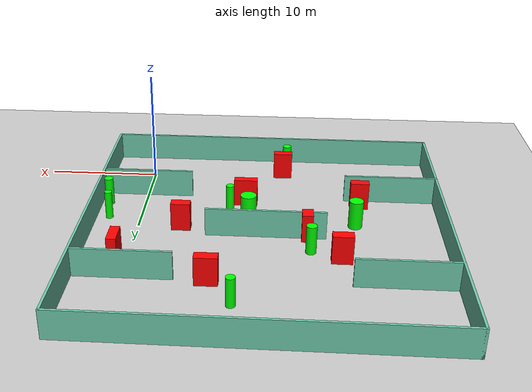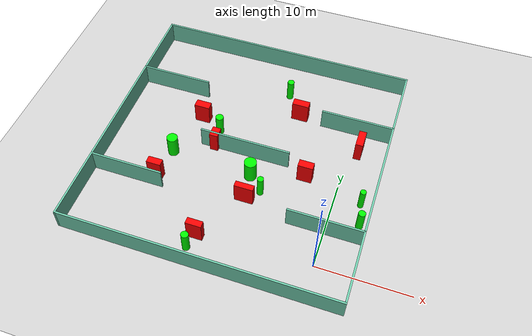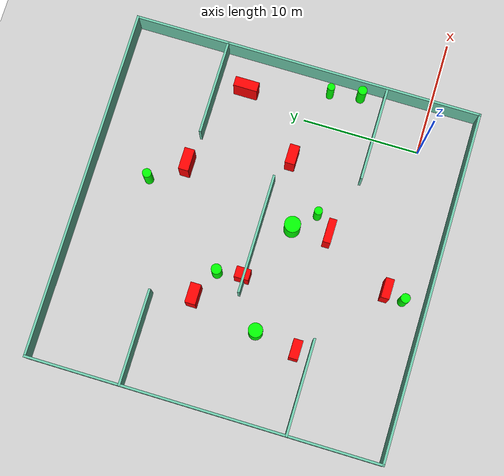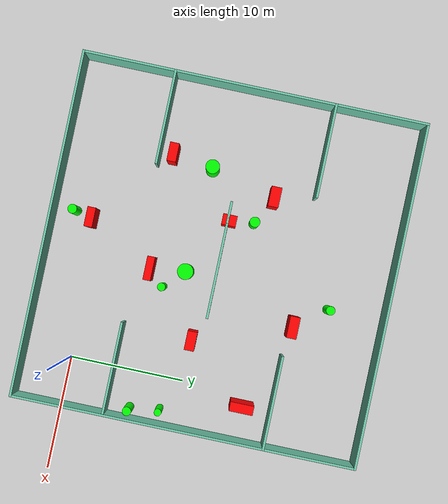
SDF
<sdf version="1.7">
 <world name="default">
  <light name="sun" type="directional">
   <pose>0 0 10 0 -0 0</pose>
   <diffuse>0.8 0.8 0.8 1</diffuse>
   <specular>0.2 0.2 0.2 1</specular>
   <attenuation>
    <range>1000</range>
    <constant>0.9</constant>
    <linear>0.01</linear>
    <quadratic>0.001</quadratic>
   </attenuation>
   <direction>-0.5 0.1 -0.9</direction>
   <spot><inner_angle>0</inner_angle><outer_angle>0</outer_angle><falloff>0</falloff></spot>
  </light>
  <model name="ground_plane">
   <static>1</static>
   <link name="link">
    <collision name="collision">
     <geometry><plane><normal>0 0 1</normal><size>100 100</size></plane></geometry>
     <surface>
      <contact><collide_bitmask>65535</collide_bitmask></contact>
      <friction><ode><mu>100</mu><mu2>50</mu2></ode></friction>
     </surface>
    </collision>
    <visual name="visual">
     <cast_shadows>0</cast_shadows>
     <geometry><plane><normal>0 0 1</normal><size>100 100</size></plane></geometry>
     <material>
      <script><uri>file://media/materials/scripts/gazebo.material</uri><name>Gazebo/Grey</name></script>
     </material>
    </visual>
   </link>
  </model>
  <gravity>0 0 -9.8</gravity>
  <magnetic_field>6e-06 2.3e-05 -4.2e-05</magnetic_field>
  <atmosphere type="adiabatic"/>
  <physics type="ode">
   <max_step_size>0.001</max_step_size>
   <real_time_factor>1</real_time_factor>
   <real_time_update_rate>1000</real_time_update_rate>
  </physics>
  <scene><ambient>0.4 0.4 0.4 1</ambient><background>0.7 0.7 0.7 1</background><shadows>1</shadows></scene>
  <spherical_coordinates>
   <surface_model>EARTH_WGS84</surface_model>
   <latitude_deg>0</latitude_deg>
   <longitude_deg>0</longitude_deg>
   <elevation>0</elevation>
   <heading_deg>0</heading_deg>
  </spherical_coordinates>
  <model name="my_base_walls">
   <link name="Wall_10">
    <collision name="Wall_10_Collision">
     <geometry><box><size>8.2 0.2 2.5</size></box></geometry>
     <pose>0 0 1.25 0 -0 0</pose>
    </collision>
    <visual name="Wall_10_Visual">
     <pose>0 0 1.25 0 -0 0</pose>
     <geometry><box><size>8.2 0.2 2.5</size></box></geometry>
     <material>
      <script><uri>file://media/materials/scripts/gazebo.material</uri><name>Gazebo/Grey</name></script>
      <ambient>0.435294 0.796078 0.67451 1</ambient>
     </material>
     <meta><layer>0</layer></meta>
    </visual>
    <pose>-11 -7 0 0 -0 0</pose>
   </link>
   <link name="Wall_12">
    <collision name="Wall_12_Collision">
     <geometry><box><size>8.2 0.2 2.5</size></box></geometry>
     <pose>0 0 1.25 0 -0 0</pose>
    </collision>
    <visual name="Wall_12_Visual">
     <pose>0 0 1.25 0 -0 0</pose>
     <geometry><box><size>8.2 0.2 2.5</size></box></geometry>
     <material>
      <script><uri>file://media/materials/scripts/gazebo.material</uri><name>Gazebo/Grey</name></script>
      <ambient>0.435294 0.796078 0.67451 1</ambient>
     </material>
     <meta><layer>0</layer></meta>
    </visual>
    <pose>-11 7 0 0 -0 0</pose>
   </link>
   <link name="Wall_14">
    <collision name="Wall_14_Collision">
     <geometry><box><size>8.2 0.2 2.5</size></box></geometry>
     <pose>0 0 1.25 0 -0 0</pose>
    </collision>
    <visual name="Wall_14_Visual">
     <pose>0 0 1.25 0 -0 0</pose>
     <geometry><box><size>8.2 0.2 2.5</size></box></geometry>
     <material>
      <script><uri>file://media/materials/scripts/gazebo.material</uri><name>Gazebo/Grey</name></script>
      <ambient>0.435294 0.796078 0.67451 1</ambient>
     </material>
     <meta><layer>0</layer></meta>
    </visual>
    <pose>11 7 0 0 -0 3.14159</pose>
   </link>
   <link name="Wall_16">
    <collision name="Wall_16_Collision">
     <geometry><box><size>10.2 0.2 2.5</size></box></geometry>
     <pose>0 0 1.25 0 -0 0</pose>
    </collision>
    <visual name="Wall_16_Visual">
     <pose>0 0 1.25 0 -0 0</pose>
     <geometry><box><size>10.2 0.2 2.5</size></box></geometry>
     <material>
      <script><uri>file://media/materials/scripts/gazebo.material</uri><name>Gazebo/Grey</name></script>
      <ambient>0.435294 0.796078 0.67451 1</ambient>
     </material>
     <meta><layer>0</layer></meta>
    </visual>
    <pose>0 0 0 0 -0 3.14159</pose>
   </link>
   <link name="Wall_2">
    <collision name="Wall_2_Collision">
     <geometry><box><size>30.2 0.2 2.5</size></box></geometry>
     <pose>0 0 1.25 0 -0 0</pose>
    </collision>
    <visual name="Wall_2_Visual">
     <pose>0 0 1.25 0 -0 0</pose>
     <geometry><box><size>30.2 0.2 2.5</size></box></geometry>
     <material>
      <script><uri>file://media/materials/scripts/gazebo.material</uri><name>Gazebo/Grey</name></script>
      <ambient>0.435294 0.796078 0.67451 1</ambient>
     </material>
     <meta><layer>0</layer></meta>
    </visual>
    <pose>0 -15 0 0 -0 3.14159</pose>
   </link>
   <link name="Wall_3">
    <collision name="Wall_3_Collision">
     <geometry><box><size>30.2 0.2 2.5</size></box></geometry>
     <pose>0 0 1.25 0 -0 0</pose>
    </collision>
    <visual name="Wall_3_Visual">
     <pose>0 0 1.25 0 -0 0</pose>
     <geometry><box><size>30.2 0.2 2.5</size></box></geometry>
     <material>
      <script><uri>file://media/materials/scripts/gazebo.material</uri><name>Gazebo/Grey</name></script>
      <ambient>0.435294 0.796078 0.67451 1</ambient>
     </material>
     <meta><layer>0</layer></meta>
    </visual>
    <pose>-15 0 0 0 -0 1.5708</pose>
   </link>
   <link name="Wall_4">
    <collision name="Wall_4_Collision">
     <geometry><box><size>30.2 0.2 2.5</size></box></geometry>
     <pose>0 0 1.25 0 -0 0</pose>
    </collision>
    <visual name="Wall_4_Visual">
     <pose>0 0 1.25 0 -0 0</pose>
     <geometry><box><size>30.2 0.2 2.5</size></box></geometry>
     <material>
      <script><uri>file://media/materials/scripts/gazebo.material</uri><name>Gazebo/Grey</name></script>
      <ambient>0.435294 0.796078 0.67451 1</ambient>
     </material>
     <meta><layer>0</layer></meta>
    </visual>
    <pose>0 15 0 0 -0 0</pose>
   </link>
   <link name="Wall_6">
    <collision name="Wall_6_Collision">
     <geometry><box><size>30.2 0.2 2.5</size></box></geometry>
     <pose>0 0 1.25 0 -0 0</pose>
    </collision>
    <visual name="Wall_6_Visual">
     <pose>0 0 1.25 0 -0 0</pose>
     <geometry><box><size>30.2 0.2 2.5</size></box></geometry>
     <material>
      <script><uri>file://media/materials/scripts/gazebo.material</uri><name>Gazebo/Grey</name></script>
      <ambient>0.435294 0.796078 0.67451 1</ambient>
     </material>
     <meta><layer>0</layer></meta>
    </visual>
    <pose>15 0 0 0 -0 1.5708</pose>
   </link>
   <link name="Wall_8">
    <collision name="Wall_8_Collision">
     <geometry><box><size>8.2 0.2 2.5</size></box></geometry>
     <pose>0 0 1.25 0 -0 0</pose>
    </collision>
    <visual name="Wall_8_Visual">
     <pose>0 0 1.25 0 -0 0</pose>
     <geometry><box><size>8.2 0.2 2.5</size></box></geometry>
     <material>
      <script><uri>file://media/materials/scripts/gazebo.material</uri><name>Gazebo/Grey</name></script>
      <ambient>0.435294 0.796078 0.67451 1</ambient>
     </material>
     <meta><layer>0</layer></meta>
    </visual>
    <pose>11 -7 0 0 -0 3.14159</pose>
   </link>
   <static>1</static>
   <pose>-11 11 0 0 -0 0</pose>
  </model>
  <model name="cylinder1">
   <static>1</static>
   <link name="link">
    <inertial>
     <mass>1</mass>
     <inertia><ixx>0.5</ixx><ixy>0</ixy><ixz>0</ixz><iyy>0.5</iyy><iyz>0</iyz><izz>1</izz></inertia>
    </inertial>
    <collision name="collision">
     <geometry><cylinder><radius>0.44341705856422214</radius><length>2.5</length></cylinder></geometry>
    </collision>
    <visual name="visual">
     <geometry><cylinder><radius>0.44341705856422214</radius><length>2.5</length></cylinder></geometry>
     <material>
      <ambient>0 1 0 1</ambient>
      <diffuse>0 1 0 1</diffuse>
      <specular>0.1 0.1 0.1 1</specular>
      <emissive>0 0 0 0</emissive>
     </material>
    </visual>
   </link>
   <pose>-14.785155774994227 13.28444576686374 1.25 0 0 0</pose>
  </model>
  <model name="cylinder2">
   <static>1</static>
   <link name="link">
    <inertial>
     <mass>1</mass>
     <inertia><ixx>0.5</ixx><ixy>0</ixy><ixz>0</ixz><iyy>0.5</iyy><iyz>0</iyz><izz>1</izz></inertia>
    </inertial>
    <collision name="collision">
     <geometry><cylinder><radius>0.3499522179914679</radius><length>2.5</length></cylinder></geometry>
    </collision>
    <visual name="visual">
     <geometry><cylinder><radius>0.3499522179914679</radius><length>2.5</length></cylinder></geometry>
     <material>
      <ambient>0 1 0 1</ambient>
      <diffuse>0 1 0 1</diffuse>
      <specular>0.1 0.1 0.1 1</specular>
      <emissive>0 0 0 0</emissive>
     </material>
    </visual>
   </link>
   <pose>-7.735372687739925 6.647466212753461 1.25 0 0 0</pose>
  </model>
  <model name="cylinder3">
   <static>1</static>
   <link name="link">
    <inertial>
     <mass>1</mass>
     <inertia><ixx>0.5</ixx><ixy>0</ixy><ixz>0</ixz><iyy>0.5</iyy><iyz>0</iyz><izz>1</izz></inertia>
    </inertial>
    <collision name="collision">
     <geometry><cylinder><radius>0.6056269577844697</radius><length>2.5</length></cylinder></geometry>
    </collision>
    <visual name="visual">
     <geometry><cylinder><radius>0.6056269577844697</radius><length>2.5</length></cylinder></geometry>
     <material>
      <ambient>0 1 0 1</ambient>
      <diffuse>0 1 0 1</diffuse>
      <specular>0.1 0.1 0.1 1</specular>
      <emissive>0 0 0 0</emissive>
     </material>
    </visual>
   </link>
   <pose>-18.65213645028758 8.784125609659505 1.25 0 0 0</pose>
  </model>
  <model name="cylinder4">
   <static>1</static>
   <link name="link">
    <inertial>
     <mass>1</mass>
     <inertia><ixx>0.5</ixx><ixy>0</ixy><ixz>0</ixz><iyy>0.5</iyy><iyz>0</iyz><izz>1</izz></inertia>
    </inertial>
    <collision name="collision">
     <geometry><cylinder><radius>0.3859521294329465</radius><length>2.5</length></cylinder></geometry>
    </collision>
    <visual name="visual">
     <geometry><cylinder><radius>0.3859521294329465</radius><length>2.5</length></cylinder></geometry>
     <material>
      <ambient>0 1 0 1</ambient>
      <diffuse>0 1 0 1</diffuse>
      <specular>0.1 0.1 0.1 1</specular>
      <emissive>0 0 0 0</emissive>
     </material>
    </visual>
   </link>
   <pose>-8.75449222170853 21.161708962505287 1.25 0 0 0</pose>
  </model>
  <model name="cylinder5">
   <static>1</static>
   <link name="link">
    <inertial>
     <mass>1</mass>
     <inertia><ixx>0.5</ixx><ixy>0</ixy><ixz>0</ixz><iyy>0.5</iyy><iyz>0</iyz><izz>1</izz></inertia>
    </inertial>
    <collision name="collision">
     <geometry><cylinder><radius>0.6897802750318484</radius><length>2.5</length></cylinder></geometry>
    </collision>
    <visual name="visual">
     <geometry><cylinder><radius>0.6897802750318484</radius><length>2.5</length></cylinder></geometry>
     <material>
      <ambient>0 1 0 1</ambient>
      <diffuse>0 1 0 1</diffuse>
      <specular>0.1 0.1 0.1 1</specular>
      <emissive>0 0 0 0</emissive>
     </material>
    </visual>
   </link>
   <pose>-9.434307833900657 8.372917445434926 1.25 0 0 0</pose>
  </model>
  <model name="cylinder6">
   <static>1</static>
   <link name="link">
    <inertial>
     <mass>1</mass>
     <inertia><ixx>0.5</ixx><ixy>0</ixy><ixz>0</ixz><iyy>0.5</iyy><iyz>0</iyz><izz>1</izz></inertia>
    </inertial>
    <collision name="collision">
     <geometry><cylinder><radius>0.31646823335889024</radius><length>2.5</length></cylinder></geometry>
    </collision>
    <visual name="visual">
     <geometry><cylinder><radius>0.31646823335889024</radius><length>2.5</length></cylinder></geometry>
     <material>
      <ambient>0 1 0 1</ambient>
      <diffuse>0 1 0 1</diffuse>
      <specular>0.1 0.1 0.1 1</specular>
      <emissive>0 0 0 0</emissive>
     </material>
    </visual>
   </link>
   <pose>2.7687952610504745 8.571727881648126 1.25 0 0 0</pose>
  </model>
  <model name="cylinder7">
   <static>1</static>
   <link name="link">
    <inertial>
     <mass>1</mass>
     <inertia><ixx>0.5</ixx><ixy>0</ixy><ixz>0</ixz><iyy>0.5</iyy><iyz>0</iyz><izz>1</izz></inertia>
    </inertial>
    <collision name="collision">
     <geometry><cylinder><radius>0.3835275814538395</radius><length>2.5</length></cylinder></geometry>
    </collision>
    <visual name="visual">
     <geometry><cylinder><radius>0.3835275814538395</radius><length>2.5</length></cylinder></geometry>
     <material>
      <ambient>0 1 0 1</ambient>
      <diffuse>0 1 0 1</diffuse>
      <specular>0.1 0.1 0.1 1</specular>
      <emissive>0 0 0 0</emissive>
     </material>
    </visual>
   </link>
   <pose>3.226825665513992 5.969234214810349 1.25 0 0 0</pose>
  </model>
  <model name="cylinder8">
   <static>1</static>
   <link name="link">
    <inertial>
     <mass>1</mass>
     <inertia><ixx>0.5</ixx><ixy>0</ixy><ixz>0</ixz><iyy>0.5</iyy><iyz>0</iyz><izz>1</izz></inertia>
    </inertial>
    <collision name="collision">
     <geometry><cylinder><radius>0.3982563859546179</radius><length>2.5</length></cylinder></geometry>
    </collision>
    <visual name="visual">
     <geometry><cylinder><radius>0.3982563859546179</radius><length>2.5</length></cylinder></geometry>
     <material>
      <ambient>0 1 0 1</ambient>
      <diffuse>0 1 0 1</diffuse>
      <specular>0.1 0.1 0.1 1</specular>
      <emissive>0 0 0 0</emissive>
     </material>
    </visual>
   </link>
   <pose>-12.659092011072115 -2.1411648203304505 1.25 0 0 0</pose>
  </model>
  <model name="box1">
   <static>1</static>
   <link name="link">
    <inertial>
     <mass>1</mass>
     <inertia><ixx>0.083</ixx><ixy>0</ixy><ixz>0</ixz><iyy>0.083</iyy><iyz>0</iyz><izz>0.083</izz></inertia>
    </inertial>
    <collision name="collision">
     <geometry><box><size>1.6986982961344377 0.7142183626840571 2.5</size></box></geometry>
    </collision>
    <visual name="visual">
     <geometry><box><size>1.6986982961344377 0.7142183626840571 2.5</size></box></geometry>
     <material>
      <ambient>1 0 0 1</ambient>
      <diffuse>1 0 0 1</diffuse>
      <specular>0.1 0.1 0.1 1</specular>
      <emissive>0 0 0 0</emissive>
     </material>
    </visual>
    <sensor name="my_contact" type="contact">
     <contact><collision>box_collision</collision><topic>__default_topic__</topic></contact>
    </sensor>
   </link>
   <pose>-12.294107017383386 -0.5421922778208366 1.25 0 0 0</pose>
  </model>
  <model name="box2">
   <static>1</static>
   <link name="link">
    <inertial>
     <mass>1</mass>
     <inertia><ixx>0.083</ixx><ixy>0</ixy><ixz>0</ixz><iyy>0.083</iyy><iyz>0</iyz><izz>0.083</izz></inertia>
    </inertial>
    <collision name="collision">
     <geometry><box><size>0.934906816450475 1.2288582132879382 2.5</size></box></geometry>
    </collision>
    <visual name="visual">
     <geometry><box><size>0.934906816450475 1.2288582132879382 2.5</size></box></geometry>
     <material>
      <ambient>1 0 0 1</ambient>
      <diffuse>1 0 0 1</diffuse>
      <specular>0.1 0.1 0.1 1</specular>
      <emissive>0 0 0 0</emissive>
     </material>
    </visual>
    <sensor name="my_contact" type="contact">
     <contact><collision>box_collision</collision><topic>__default_topic__</topic></contact>
    </sensor>
   </link>
   <pose>-14.495308008610316 11.133948579279533 1.25 0 0 0</pose>
  </model>
  <model name="box3">
   <static>1</static>
   <link name="link">
    <inertial>
     <mass>1</mass>
     <inertia><ixx>0.083</ixx><ixy>0</ixy><ixz>0</ixz><iyy>0.083</iyy><iyz>0</iyz><izz>0.083</izz></inertia>
    </inertial>
    <collision name="collision">
     <geometry><box><size>1.8815930975468713 0.8675341577832325 2.5</size></box></geometry>
    </collision>
    <visual name="visual">
     <geometry><box><size>1.8815930975468713 0.8675341577832325 2.5</size></box></geometry>
     <material>
      <ambient>1 0 0 1</ambient>
      <diffuse>1 0 0 1</diffuse>
      <specular>0.1 0.1 0.1 1</specular>
      <emissive>0 0 0 0</emissive>
     </material>
    </visual>
    <sensor name="my_contact" type="contact">
     <contact><collision>box_collision</collision><topic>__default_topic__</topic></contact>
    </sensor>
   </link>
   <pose>-6.686710652738958 18.367602632027726 1.25 0 0 0</pose>
  </model>
  <model name="box4">
   <static>1</static>
   <link name="link">
    <inertial>
     <mass>1</mass>
     <inertia><ixx>0.083</ixx><ixy>0</ixy><ixz>0</ixz><iyy>0.083</iyy><iyz>0</iyz><izz>0.083</izz></inertia>
    </inertial>
    <collision name="collision">
     <geometry><box><size>2.0660733875209143 0.6594758405734362 2.5</size></box></geometry>
    </collision>
    <visual name="visual">
     <geometry><box><size>2.0660733875209143 0.6594758405734362 2.5</size></box></geometry>
     <material>
      <ambient>1 0 0 1</ambient>
      <diffuse>1 0 0 1</diffuse>
      <specular>0.1 0.1 0.1 1</specular>
      <emissive>0 0 0 0</emissive>
     </material>
    </visual>
    <sensor name="my_contact" type="contact">
     <contact><collision>box_collision</collision><topic>__default_topic__</topic></contact>
    </sensor>
   </link>
   <pose>-9.058910329203488 5.284743249854895 1.25 0 0 0</pose>
  </model>
  <model name="box5">
   <static>1</static>
   <link name="link">
    <inertial>
     <mass>1</mass>
     <inertia><ixx>0.083</ixx><ixy>0</ixy><ixz>0</ixz><iyy>0.083</iyy><iyz>0</iyz><izz>0.083</izz></inertia>
    </inertial>
    <collision name="collision">
     <geometry><box><size>0.8107004582792463 2.047334809050912 2.5</size></box></geometry>
    </collision>
    <visual name="visual">
     <geometry><box><size>0.8107004582792463 2.047334809050912 2.5</size></box></geometry>
     <material>
      <ambient>1 0 0 1</ambient>
      <diffuse>1 0 0 1</diffuse>
      <specular>0.1 0.1 0.1 1</specular>
      <emissive>0 0 0 0</emissive>
     </material>
    </visual>
    <sensor name="my_contact" type="contact">
     <contact><collision>box_collision</collision><topic>__default_topic__</topic></contact>
    </sensor>
   </link>
   <pose>0.9633093624577391 15.484872525681915 1.25 0 0 0</pose>
  </model>
  <model name="box6">
   <static>1</static>
   <link name="link">
    <inertial>
     <mass>1</mass>
     <inertia><ixx>0.083</ixx><ixy>0</ixy><ixz>0</ixz><iyy>0.083</iyy><iyz>0</iyz><izz>0.083</izz></inertia>
    </inertial>
    <collision name="collision">
     <geometry><box><size>1.6590645084121765 0.8525628159759426 2.5</size></box></geometry>
    </collision>
    <visual name="visual">
     <geometry><box><size>1.6590645084121765 0.8525628159759426 2.5</size></box></geometry>
     <material>
      <ambient>1 0 0 1</ambient>
      <diffuse>1 0 0 1</diffuse>
      <specular>0.1 0.1 0.1 1</specular>
      <emissive>0 0 0 0</emissive>
     </material>
    </visual>
    <sensor name="my_contact" type="contact">
     <contact><collision>box_collision</collision><topic>__default_topic__</topic></contact>
    </sensor>
   </link>
   <pose>-3.754964980513286 10.062055789662484 1.25 0 0 0</pose>
  </model>
  <model name="box7">
   <static>1</static>
   <link name="link">
    <inertial>
     <mass>1</mass>
     <inertia><ixx>0.083</ixx><ixy>0</ixy><ixz>0</ixz><iyy>0.083</iyy><iyz>0</iyz><izz>0.083</izz></inertia>
    </inertial>
    <collision name="collision">
     <geometry><box><size>1.616772136258376 0.7909193383643973 2.5</size></box></geometry>
    </collision>
    <visual name="visual">
     <geometry><box><size>1.616772136258376 0.7909193383643973 2.5</size></box></geometry>
     <material>
      <ambient>1 0 0 1</ambient>
      <diffuse>1 0 0 1</diffuse>
      <specular>0.1 0.1 0.1 1</specular>
      <emissive>0 0 0 0</emissive>
     </material>
    </visual>
    <sensor name="my_contact" type="contact">
     <contact><collision>box_collision</collision><topic>__default_topic__</topic></contact>
    </sensor>
   </link>
   <pose>-19.173103347053903 5.223725626639126 1.25 0 0 0</pose>
  </model>
  <model name="box8">
   <static>1</static>
   <link name="link">
    <inertial>
     <mass>1</mass>
     <inertia><ixx>0.083</ixx><ixy>0</ixy><ixz>0</ixz><iyy>0.083</iyy><iyz>0</iyz><izz>0.083</izz></inertia>
    </inertial>
    <collision name="collision">
     <geometry><box><size>1.730093518153434 0.8961287479026685 2.5</size></box></geometry>
    </collision>
    <visual name="visual">
     <geometry><box><size>1.730093518153434 0.8961287479026685 2.5</size></box></geometry>
     <material>
      <ambient>1 0 0 1</ambient>
      <diffuse>1 0 0 1</diffuse>
      <specular>0.1 0.1 0.1 1</specular>
      <emissive>0 0 0 0</emissive>
     </material>
    </visual>
    <sensor name="my_contact" type="contact">
     <contact><collision>box_collision</collision><topic>__default_topic__</topic></contact>
    </sensor>
   </link>
   <pose>-17.245301552372908 14.519706734071342 1.25 0 0 0</pose>
  </model>
 </world>
</sdf>
